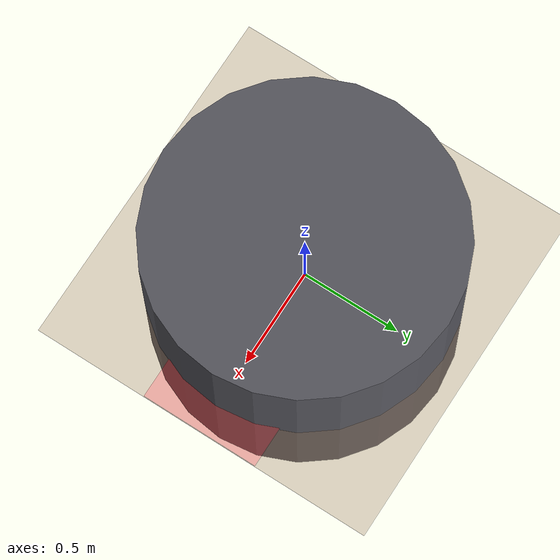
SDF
<?xml version="1.0"?>
<sdf version="1.6">
  <world name="lander_tether_site">

    <physics type="ode">
      <max_step_size>0.001</max_step_size>
      <real_time_factor>1.0</real_time_factor>
      <real_time_update_rate>1000</real_time_update_rate>
    </physics>

    <gravity>0 0 -3.711</gravity>

    <include>
      <uri>model://sun</uri>
    </include>

    <include>
      <uri>model://regolith_flat</uri>
      <name>terrain</name>
      <pose>0 0 0 0 0 0</pose>
    </include>

    <!-- Apply deterministic terrain preset -->
    <plugin name="terrain_preset" filename="libterrain_preset_plugin.so">
      <preset>regolith_nominal</preset>
      <target_model>terrain</target_model>
      <target_link>ground</target_link>
    </plugin>

    <!-- Lander: static test article (simple cylinder + box) -->
    <model name="lander">
      <static>true</static>
      <pose>0 0 0 0 0 0</pose>
      <link name="body">
        <collision name="collision">
          <geometry>
            <cylinder>
              <radius>0.75</radius>
              <length>1.2</length>
            </cylinder>
          </geometry>
        </collision>
        <visual name="visual">
          <geometry>
            <cylinder>
              <radius>0.75</radius>
              <length>1.2</length>
            </cylinder>
          </geometry>
          <material>
            <ambient>0.35 0.35 0.38 1</ambient>
            <diffuse>0.35 0.35 0.38 1</diffuse>
          </material>
        </visual>
      </link>
    </model>

    <!-- Visual-only tether corridor marker (does NOT enforce physics) -->
    <model name="tether_marker">
      <static>true</static>
      <pose>3.2 0 0.02 0 0 0</pose>
      <link name="marker">
        <visual name="visual">
          <geometry>
            <box>
              <size>6.0 0.6 0.02</size>
            </box>
          </geometry>
          <material>
            <ambient>0.9 0.2 0.2 0.4</ambient>
            <diffuse>0.9 0.2 0.2 0.4</diffuse>
          </material>
        </visual>
      </link>
    </model>

  </world>
</sdf>

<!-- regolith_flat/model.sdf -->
<sdf version="1.6">
  <model name="regolith_flat">
    <static>true</static>
    <link name="ground">
      <collision name="collision">
        <geometry>
          <plane>
            <normal>0 0 1</normal>
            <size>200 200</size>
          </plane>
        </geometry>
        <surface>
          <friction>
            <ode>
              <mu>0.7</mu>
              <mu2>0.7</mu2>
            </ode>
          </friction>
          <bounce>
            <restitution_coefficient>0.05</restitution_coefficient>
          </bounce>
        </surface>
      </collision>

      <visual name="visual">
        <geometry>
          <plane>
            <normal>0 0 1</normal>
            <size>200 200</size>
          </plane>
        </geometry>
        <material>
          <ambient>0.60 0.45 0.30 1</ambient>
          <diffuse>0.60 0.45 0.30 1</diffuse>
        </material>
      </visual>
    </link>
  </model>
</sdf>
